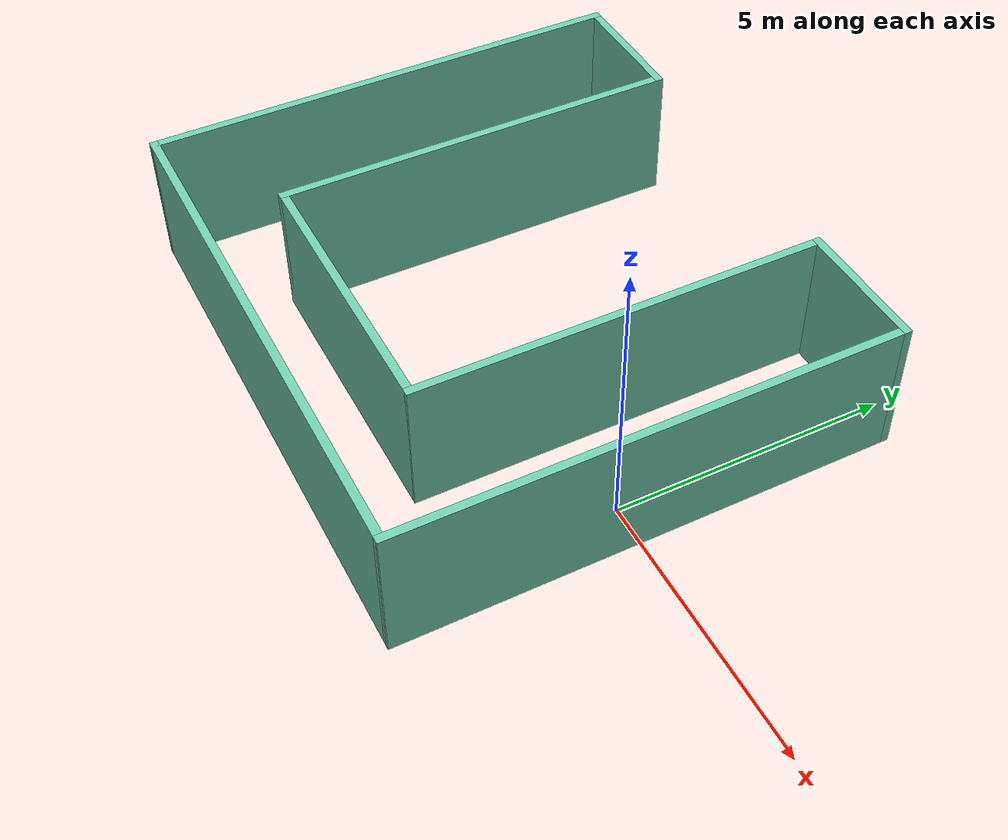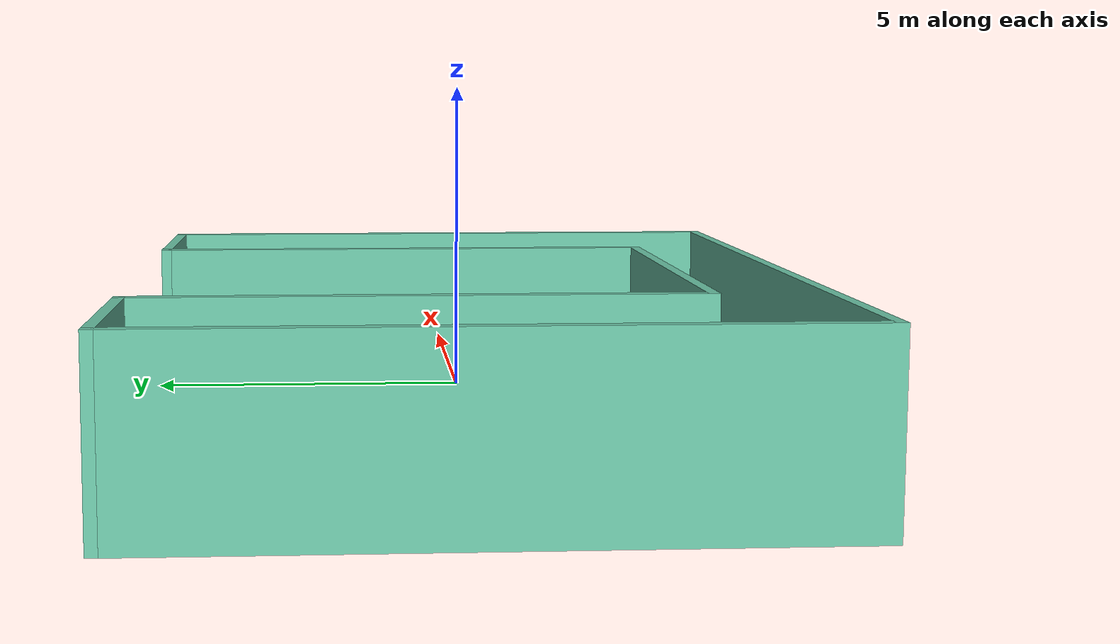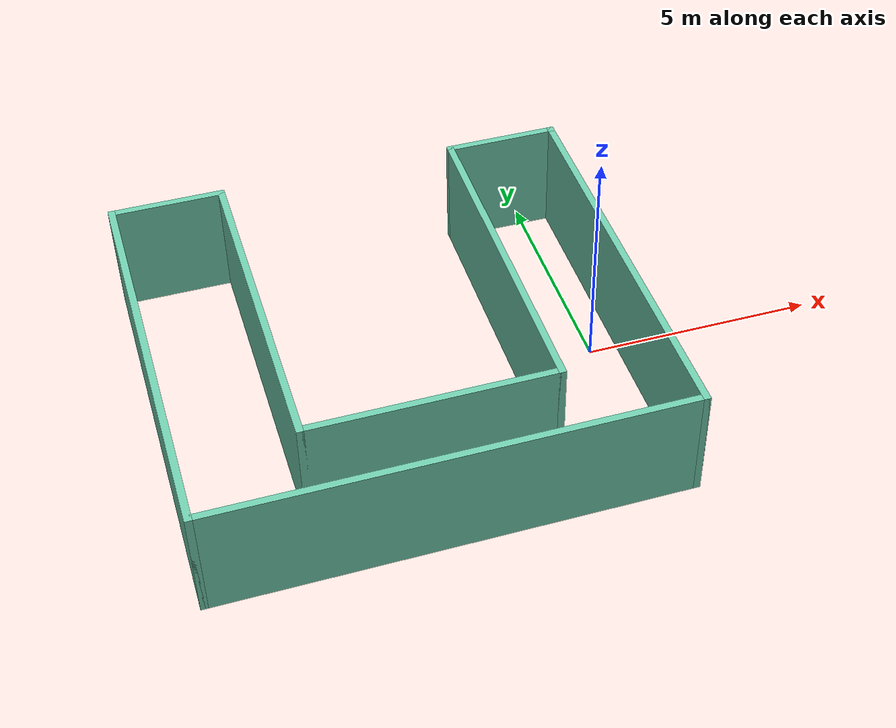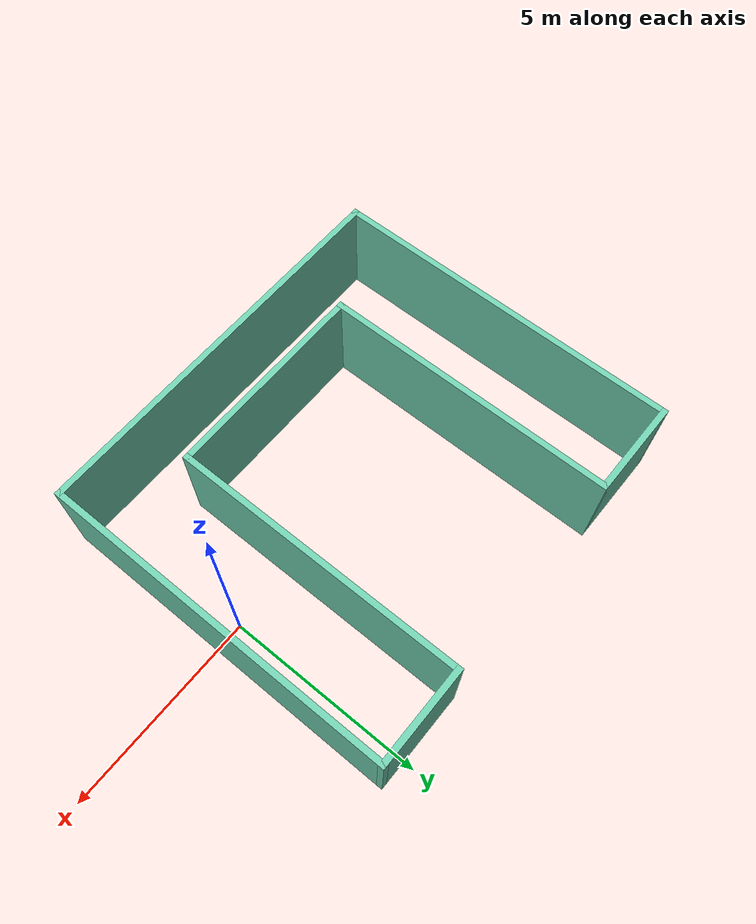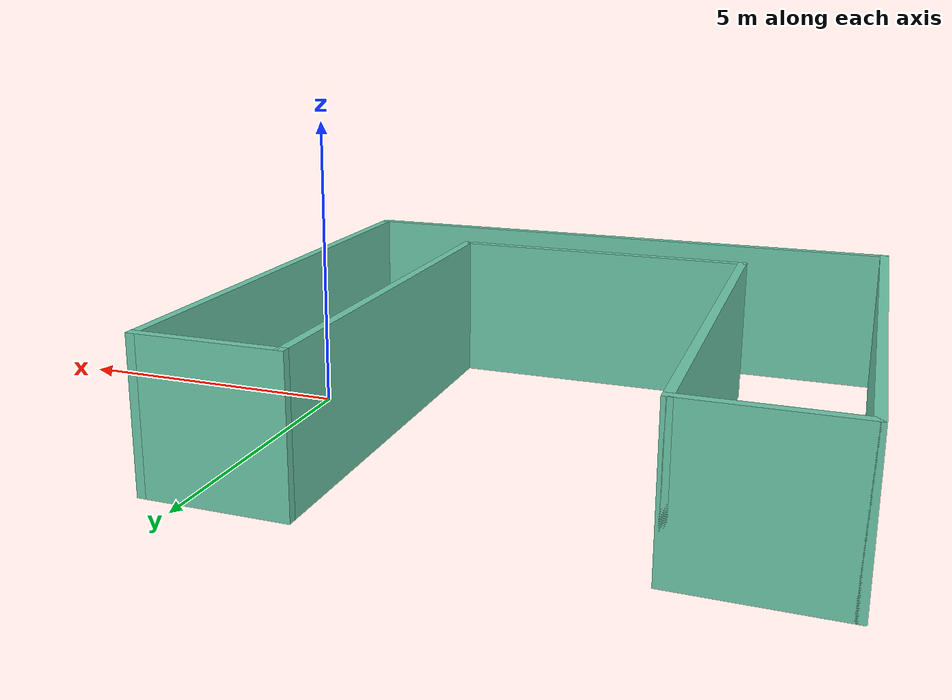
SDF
<?xml version='1.0'?>
<sdf version='1.7'>
  <model name='wall'>
    <pose>-4.26349 0.230041 0 0 -0 0</pose>
    <link name='Wall_12'>
      <collision name='Wall_12_Collision'>
        <geometry>
          <box>
            <size>9 0.15 2.5</size>
          </box>
        </geometry>
        <pose>0 0 1.25 0 -0 0</pose>
      </collision>
      <visual name='Wall_12_Visual'>
        <pose>0 0 1.25 0 -0 0</pose>
        <geometry>
          <box>
            <size>9 0.15 2.5</size>
          </box>
        </geometry>
        <material>
          <script>
            <uri>file://media/materials/scripts/gazebo.material</uri>
            <name>Gazebo/Grey</name>
          </script>
          <ambient>0.435294 0.796078 0.67451 1</ambient>
        </material>
        <meta>
          <layer>0</layer>
        </meta>
      </visual>
      <pose>-4.925 -0 0 0 -0 -1.5708</pose>
    </link>
    <link name='Wall_13'>
      <collision name='Wall_13_Collision'>
        <geometry>
          <box>
            <size>10 0.15 2.5</size>
          </box>
        </geometry>
        <pose>0 0 1.25 0 -0 0</pose>
      </collision>
      <visual name='Wall_13_Visual'>
        <pose>0 0 1.25 0 -0 0</pose>
        <geometry>
          <box>
            <size>10 0.15 2.5</size>
          </box>
        </geometry>
        <material>
          <script>
            <uri>file://media/materials/scripts/gazebo.material</uri>
            <name>Gazebo/Grey</name>
          </script>
          <ambient>0.435294 0.796078 0.67451 1</ambient>
        </material>
        <meta>
          <layer>0</layer>
        </meta>
      </visual>
      <pose>-0 -4.425 0 0 -0 0</pose>
    </link>
    <link name='Wall_14'>
      <collision name='Wall_14_Collision'>
        <geometry>
          <box>
            <size>9 0.15 2.5</size>
          </box>
        </geometry>
        <pose>0 0 1.25 0 -0 0</pose>
      </collision>
      <visual name='Wall_14_Visual'>
        <pose>0 0 1.25 0 -0 0</pose>
        <geometry>
          <box>
            <size>9 0.15 2.5</size>
          </box>
        </geometry>
        <material>
          <script>
            <uri>file://media/materials/scripts/gazebo.material</uri>
            <name>Gazebo/Grey</name>
          </script>
          <ambient>0.435294 0.796078 0.67451 1</ambient>
        </material>
        <meta>
          <layer>0</layer>
        </meta>
      </visual>
      <pose>4.925 -0 0 0 -0 1.5708</pose>
    </link>
    <link name='Wall_15'>
      <collision name='Wall_15_Collision'>
        <geometry>
          <box>
            <size>2.5 0.15 2.5</size>
          </box>
        </geometry>
        <pose>0 0 1.25 0 -0 0</pose>
      </collision>
      <visual name='Wall_15_Visual'>
        <pose>0 0 1.25 0 -0 0</pose>
        <geometry>
          <box>
            <size>2.5 0.15 2.5</size>
          </box>
        </geometry>
        <material>
          <script>
            <uri>file://media/materials/scripts/gazebo.material</uri>
            <name>Gazebo/Grey</name>
          </script>
          <ambient>0.435294 0.796078 0.67451 1</ambient>
        </material>
        <meta>
          <layer>0</layer>
        </meta>
      </visual>
      <pose>3.75 4.425 0 0 -0 3.14159</pose>
    </link>
    <link name='Wall_19'>
      <collision name='Wall_19_Collision'>
        <geometry>
          <box>
            <size>2.5 0.15 2.5</size>
          </box>
        </geometry>
        <pose>0 0 1.25 0 -0 0</pose>
      </collision>
      <visual name='Wall_19_Visual'>
        <pose>0 0 1.25 0 -0 0</pose>
        <geometry>
          <box>
            <size>2.5 0.15 2.5</size>
          </box>
        </geometry>
        <material>
          <script>
            <uri>file://media/materials/scripts/gazebo.material</uri>
            <name>Gazebo/Grey</name>
          </script>
          <ambient>0.435294 0.796078 0.67451 1</ambient>
        </material>
        <meta>
          <layer>0</layer>
        </meta>
      </visual>
      <pose>-3.75 4.425 0 0 -0 0</pose>
    </link>
    <link name='Wall_20'>
      <collision name='Wall_20_Collision'>
        <geometry>
          <box>
            <size>7.5 0.15 2.5</size>
          </box>
        </geometry>
        <pose>0 0 1.25 0 -0 0</pose>
      </collision>
      <visual name='Wall_20_Visual'>
        <pose>0 0 1.25 0 -0 0</pose>
        <geometry>
          <box>
            <size>7.5 0.15 2.5</size>
          </box>
        </geometry>
        <material>
          <script>
            <uri>file://media/materials/scripts/gazebo.material</uri>
            <name>Gazebo/Grey</name>
          </script>
          <ambient>0.435294 0.796078 0.67451 1</ambient>
        </material>
        <meta>
          <layer>0</layer>
        </meta>
      </visual>
      <pose>-2.575 0.75 0 0 -0 -1.5708</pose>
    </link>
    <link name='Wall_21'>
      <collision name='Wall_21_Collision'>
        <geometry>
          <box>
            <size>5.25 0.15 2.5</size>
          </box>
        </geometry>
        <pose>0 0 1.25 0 -0 0</pose>
      </collision>
      <visual name='Wall_21_Visual'>
        <pose>0 0 1.25 0 -0 0</pose>
        <geometry>
          <box>
            <size>5.25 0.15 2.5</size>
          </box>
        </geometry>
        <material>
          <script>
            <uri>file://media/materials/scripts/gazebo.material</uri>
            <name>Gazebo/Grey</name>
          </script>
          <ambient>0.435294 0.796078 0.67451 1</ambient>
        </material>
        <meta>
          <layer>0</layer>
        </meta>
      </visual>
      <pose>-0.025 -2.925 0 0 -0 0</pose>
    </link>
    <link name='Wall_25'>
      <collision name='Wall_25_Collision'>
        <geometry>
          <box>
            <size>7.5 0.15 2.5</size>
          </box>
        </geometry>
        <pose>0 0 1.25 0 -0 0</pose>
      </collision>
      <visual name='Wall_25_Visual'>
        <pose>0 0 1.25 0 -0 0</pose>
        <geometry>
          <box>
            <size>7.5 0.15 2.5</size>
          </box>
        </geometry>
        <material>
          <script>
            <uri>file://media/materials/scripts/gazebo.material</uri>
            <name>Gazebo/Grey</name>
          </script>
          <ambient>0.435294 0.796078 0.67451 1</ambient>
        </material>
        <meta>
          <layer>0</layer>
        </meta>
      </visual>
      <pose>2.575 0.75 0 0 -0 -1.5708</pose>
    </link>
    <static>1</static>
  </model>
</sdf>
